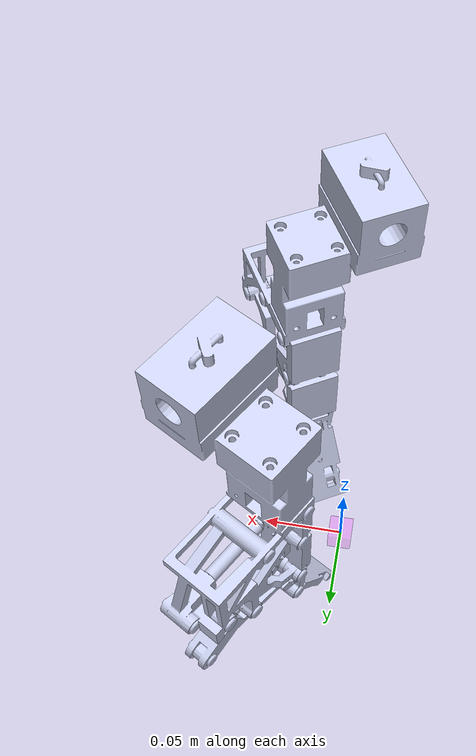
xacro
<?xml version="1.0" ?>
<robot name="pusher" xmlns:xacro="http://ros.org/wiki/xacro">
	<xacro:property name="PI" value="3.1415926535897931"/>

  <!-- honeycomb with plate -->
  <xacro:include filename="../pusher.urdf"/>
  <xacro:include filename="hanyang_gripper_isaac_description.urdf"/>

  <joint name="world-env_joint" type="fixed">
    <parent link="eef_p"/>
    <child link="eef"/>
    <origin
      xyz="0 0 0"
      rpy="0 0 0"/>
  </joint>
</robot>

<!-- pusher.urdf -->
<robot name="gripper">
  <link name="base_link">
  <inertial>
      <mass value="0.05" />
      <inertia ixx="0.000016667" ixy="0" ixz="0" iyy="0.000016667" iyz="0" izz="0.000016667" />
    </inertial>
    <visual>
      <geometry>
        <box size="0.0 0.0 0.0"/>
      </geometry>
    </visual>
  </link>

  <link name="link1">
    <inertial>
      <mass value="0.05" />
      <inertia ixx="0.000016667" ixy="0" ixz="0" iyy="0.000016667" iyz="0" izz="0.000016667" />
    </inertial>
    <visual>
      <geometry>
        <box size="0.0 0.0 0.0"/>
      </geometry>
    </visual>
  </link>

  <joint name="joint1" type="prismatic">
    <parent link="base_link"/>
    <child link="link1"/>
    <axis xyz="1 0 0"/>
    <dynamics damping="10.0"/>
    <limit effort="10" lower="-10" upper="10" velocity="10"/>
  </joint>

  <link name="link2">
    <inertial>
      <mass value="0.05" />
      <inertia ixx="0.000016667" ixy="0" ixz="0" iyy="0.000016667" iyz="0" izz="0.000016667" />
    </inertial>
    <visual>
      <geometry>
        <box size="0.0 0.0 0.0"/>
      </geometry>
    </visual>
  </link>

  <joint name="joint2" type="prismatic">
    <origin rpy="0 0 0" xyz="0 0 0"/>
    <parent link="link1"/>
    <child link="link2"/>
    <axis xyz="0 1 0"/>
    <dynamics damping="10.0"/>
    <limit effort="10" lower="-10" upper="10" velocity="10"/>
  </joint>

  <link name="eef_z">
    <inertial>
      <mass value="0.05" />
      <inertia ixx="0.000016667" ixy="0" ixz="0" iyy="0.000016667" iyz="0" izz="0.000016667" />
    </inertial>
    <visual>
      <geometry>
        <box size="0.015 0.015 0.015"/>
      </geometry>
      <material name="eef">
        <color rgba="1 0 1 0.1"/>
      </material>
    </visual>
  </link>

  <joint name="eef_z_joint" type="revolute">
    <safety_controller k_position="100.0" k_velocity="40.0" soft_lower_limit="-2.8973" soft_upper_limit="2.8973"/>
    <parent link="link2"/>
    <child link="eef_z"/>
    <axis xyz="0 0 1"/>
    <dynamics damping="10.0"/>
    <limit effort="10" lower="-10" upper="10" velocity="10"/>
  </joint>

  <link name="eef_y">
    <inertial>
      <mass value="0.05" />
      <inertia ixx="0.000016667" ixy="0" ixz="0" iyy="0.000016667" iyz="0" izz="0.000016667" />
    </inertial>
    <visual>
      <geometry>
        <box size="0 0 0"/>
      </geometry>
    </visual>
  </link>

  <joint name="eef_y_joint" type="prismatic">
    <origin rpy="0 0 0" xyz="0 0 0"/>
    <parent link="eef_z"/>
    <child link="eef_y"/>
    <axis xyz="1 0 0"/>
    <dynamics damping="10.0"/>
    <limit effort="10" lower="-0.1" upper="0.1" velocity="10"/>
  </joint>

  <link name="eef_p">
    <inertial>
      <mass value="0.05" />
      <inertia ixx="0.000016667" ixy="0" ixz="0" iyy="0.000016667" iyz="0" izz="0.000016667" />
    </inertial>
  </link>

  <joint name="eef_p_joint" type="revolute">
    <safety_controller k_position="100.0" k_velocity="40.0" soft_lower_limit="-1.570796" soft_upper_limit="1.570796"/>
    <parent link="eef_y"/>
    <child link="eef_p"/>
    <axis xyz="0 1 0"/>
    <dynamics damping="100.0"/>
    <limit effort="100" lower="-10" upper="10" velocity="100"/>
  </joint>
  </robot>

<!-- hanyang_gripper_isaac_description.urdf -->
<robot
  name="hanyang_gripper_isaac_description">
  <link
    name="eef">
      <visual>
        <origin xyz="0 0 0" rpy="0 0 0"/>
        <geometry>
          <box size="0.015 0.015 0.015"/>
        </geometry>
        <material name="eef">
          <color rgba="1 0 1 0.1"/>
        </material>
      </visual>
  </link>
  <link
    name="finger_1_1_link">
    <inertial>
      <origin
        xyz="0.00349284549789534 -0.050025048950824 -0.0210812927299723"
        rpy="0 0 0" />
      <mass
        value="0.154570337903723" />
      <inertia
        ixx="3.89039858559283E-05"
        ixy="2.89920889852035E-06"
        ixz="1.14231873725166E-06"
        iyy="4.83952164769888E-05"
        iyz="-7.44428141881446E-07"
        izz="4.54599283772954E-05" />
    </inertial>
    <visual>
      <origin
        xyz="0 0 0"
        rpy="0 0 0" />
      <geometry>
        <mesh
          filename="package://hanyang_gripper_isaac_description/meshes/finger_1_1_link.STL" />
      </geometry>
      <material
        name="">
        <color
          rgba="0.792156862745098 0.819607843137255 0.933333333333333 1" />
      </material>
    </visual>
    <collision>
      <origin
        xyz="0 0 0"
        rpy="0 0 0" />
      <geometry>
        <mesh
          filename="package://hanyang_gripper_isaac_description/meshes/finger_1_1_link.STL" />
      </geometry>
    </collision>
  </link>
  <joint
    name="finger_1_1_joint"
    type="prismatic">
    <origin
      xyz="0.062623 0.041584 0.22997"
      rpy="1.5708 0 1.0472" />
    <parent
      link="eef" />
    <child
      link="finger_1_1_link" />
    <axis
      xyz="1 0 0" />
    <dynamics damping="10.0"/>
    <limit
      lower="0"
      upper="0.129"
      effort="20"
      velocity="10" />
  </joint>
  <link
    name="finger_1_2_link">
    <inertial>
      <origin
        xyz="-0.010542450944798 0.00172194122196023 -0.0278026060177003"
        rpy="0 0 0" />
      <mass
        value="0.02455101194144" />
      <inertia
        ixx="2.82122578994014E-06"
        ixy="-4.48263705420781E-09"
        ixz="1.31635862466435E-06"
        iyy="5.58049262105453E-06"
        iyz="2.68007985844004E-08"
        izz="5.0262302090158E-06" />
    </inertial>
    <visual>
      <origin
        xyz="0 0 0"
        rpy="0 0 0" />
      <geometry>
        <mesh
          filename="package://hanyang_gripper_isaac_description/meshes/finger_1_2_link.STL" />
      </geometry>
      <material
        name="">
        <color
          rgba="0.792156862745098 0.819607843137255 0.933333333333333 1" />
      </material>
    </visual>
    <collision>
      <origin
        xyz="0 0 0"
        rpy="0 0 0" />
      <geometry>
        <mesh
          filename="package://hanyang_gripper_isaac_description/meshes/finger_1_2_link.STL" />
      </geometry>
    </collision>
  </link>
  <joint
    name="finger_1_2_joint"
    type="revolute">
    <origin
      xyz="-0.0073247 -0.16797 -0.032691"
      rpy="1.5708 0 3.1416" />
    <parent
      link="finger_1_1_link" />
    <child
      link="finger_1_2_link" />
    <axis
      xyz="0 -1 0" />
    <dynamics damping="10.0"/>
    <limit
      lower="-0.13963"
      upper="0.34907"
      effort="20"
      velocity="10" />
  </joint>
  <link
    name="finger_2_1_link">
    <inertial>
      <origin
        xyz="0.00349284544119963 -0.0500250494496162 -0.0210812928154636"
        rpy="0 0 0" />
      <mass
        value="0.154570338845147" />
      <inertia
        ixx="3.89039859841051E-05"
        ixy="2.89920891011328E-06"
        ixz="1.14231873888314E-06"
        iyy="4.83952164705115E-05"
        iyz="-7.44428159399651E-07"
        izz="4.54599284933065E-05" />
    </inertial>
    <visual>
      <origin
        xyz="0 0 0"
        rpy="0 0 0" />
      <geometry>
        <mesh
          filename="package://hanyang_gripper_isaac_description/meshes/finger_2_1_link.STL" />
      </geometry>
      <material
        name="">
        <color
          rgba="0.792156862745098 0.819607843137255 0.933333333333333 1" />
      </material>
    </visual>
    <collision>
      <origin
        xyz="0 0 0"
        rpy="0 0 0" />
      <geometry>
        <mesh
          filename="package://hanyang_gripper_isaac_description/meshes/finger_2_1_link.STL" />
      </geometry>
    </collision>
  </link>
  <joint
    name="finger_2_1_joint"
    type="prismatic">
    <origin
      xyz="0.0047012 -0.075026 0.22997"
      rpy="1.5708 0 -1.0472" />
    <parent
      link="eef" />
    <child
      link="finger_2_1_link" />
    <axis
      xyz="1 0 0" />
    <dynamics damping="10.0"/>
    <limit
      lower="0"
      upper="0.129"
      effort="20"
      velocity="10" />
  </joint>
  <link
    name="finger_2_2_link">
    <inertial>
      <origin
        xyz="0.0198331264051502 0.00172194131414377 -0.0278026112037169"
        rpy="0 0 0" />
      <mass
        value="0.0245510398621431" />
      <inertia
        ixx="2.82123034158343E-06"
        ixy="-4.48239267312543E-09"
        ixz="1.31636096308731E-06"
        iyy="5.58049832916389E-06"
        iyz="2.68002635228861E-08"
        izz="5.02623153873332E-06" />
    </inertial>
    <visual>
      <origin
        xyz="0 0 0"
        rpy="0 0 0" />
      <geometry>
        <mesh
          filename="package://hanyang_gripper_isaac_description/meshes/finger_2_2_link.STL" />
      </geometry>
      <material
        name="">
        <color
          rgba="0.792156862745098 0.819607843137255 0.933333333333333 1" />
      </material>
    </visual>
    <collision>
      <origin
        xyz="0 0 0"
        rpy="0 0 0" />
      <geometry>
        <mesh
          filename="package://hanyang_gripper_isaac_description/meshes/finger_2_2_link.STL" />
      </geometry>
    </collision>
  </link>
  <joint
    name="finger_2_2_joint"
    type="revolute">
    <origin
      xyz="0.023051 -0.16797 -0.032691"
      rpy="1.5708 0 -3.1416" />
    <parent
      link="finger_2_1_link" />
    <child
      link="finger_2_2_link" />
    <axis
      xyz="0 -1 0" />
    <dynamics damping="10.0"/>
    <limit
      lower="-0.13963"
      upper="0.34907"
      effort="20"
      velocity="10" />
  </joint>
</robot>
